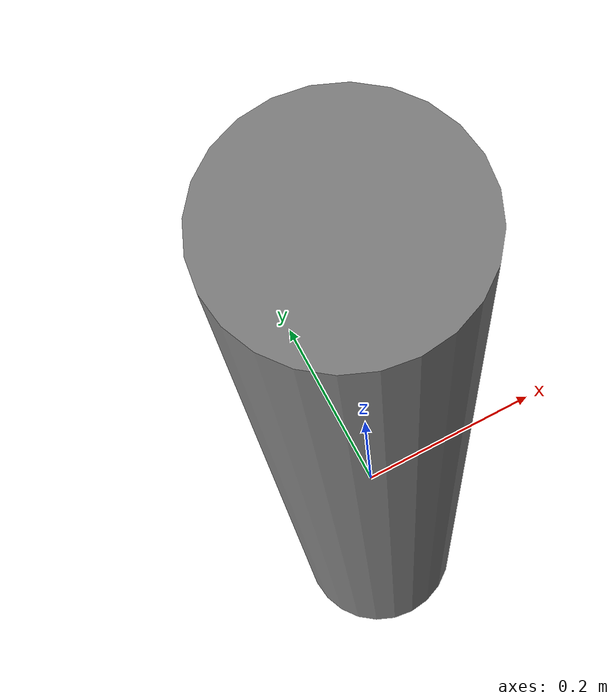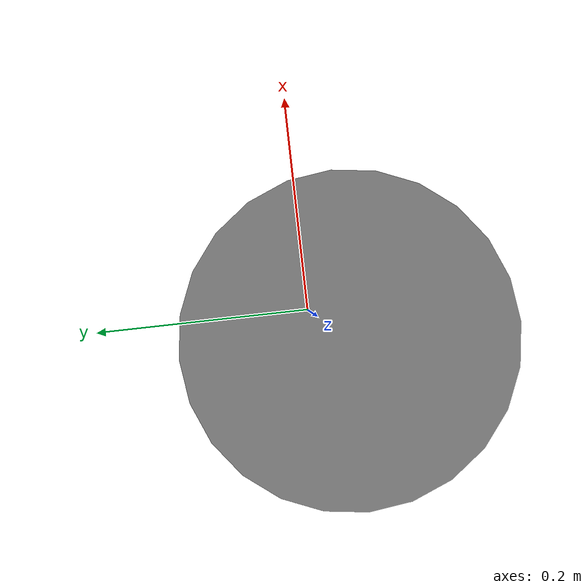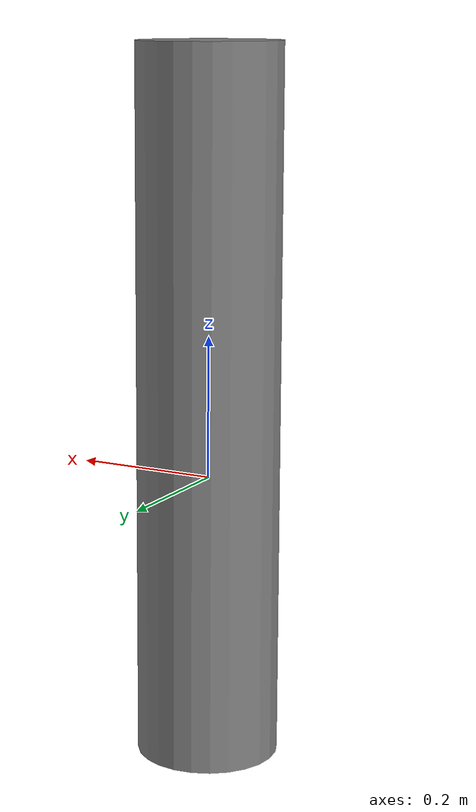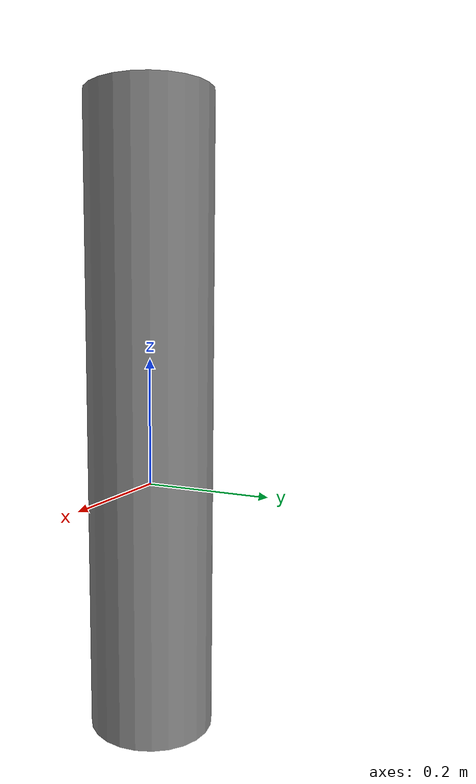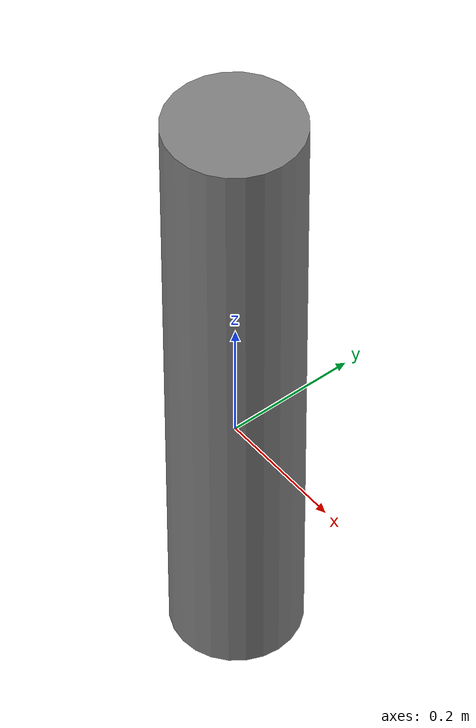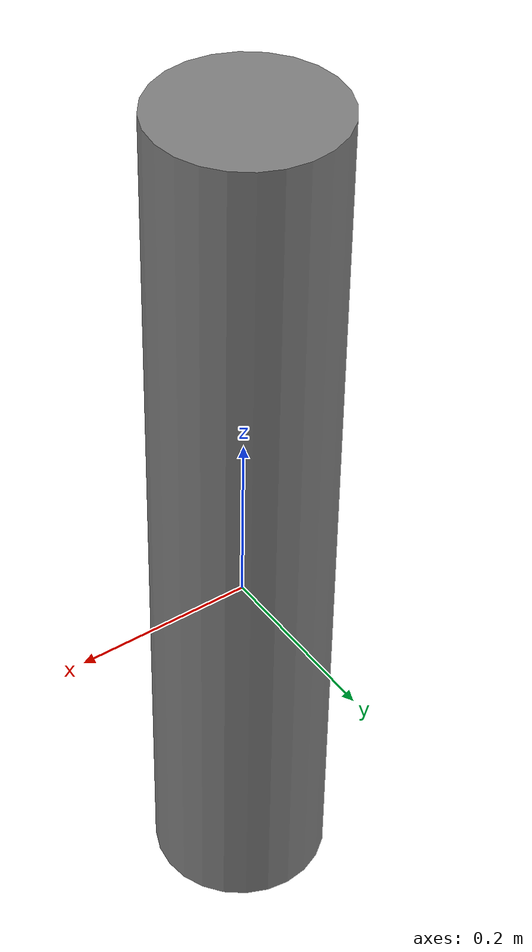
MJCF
<mujoco model="thermaltest">
  <extension>
    <plugin plugin="mujoco.sensor.thermal">
      <instance name="explicit_thermal">
        <config key="C" value="42"/>
        <config key="Rth" value="3.4"/>
        <config key="TempCoeff" value="0.039"/>
        <config key="RNorm" value="0.46"/>
        <config key="Kt25" value="0.068"/>
        <config key="Kt130" value="0.061"/>
        <config key="G" value="3141.59"/>
      </instance>
    </plugin>
  </extension>

  <visual>
      <headlight ambient=".7 .7 .7" diffuse=".2 .2 .2" specular="0.1 0.1 0.1"/>
      <map znear="0.01"/>
  </visual>

  <custom>
    <numeric name="ambient_temperature" data="298.15"/>
  </custom>

  <worldbody>
    <body name="cylinder" pos="0 0 .1">
      <joint name="linear" type="slide" axis="1 0 0"/>
      <geom type="cylinder" size=".1 .5" mass="0.1"/>
    </body>

    <light pos="0 0 5"/>
  </worldbody>

  <actuator>
    <motor name="test_actuator" joint="linear"/>
  </actuator>

  <sensor>
    <plugin name="thermal" instance="explicit_thermal" objtype="actuator" objname="test_actuator"/>
  </sensor>
</mujoco>
